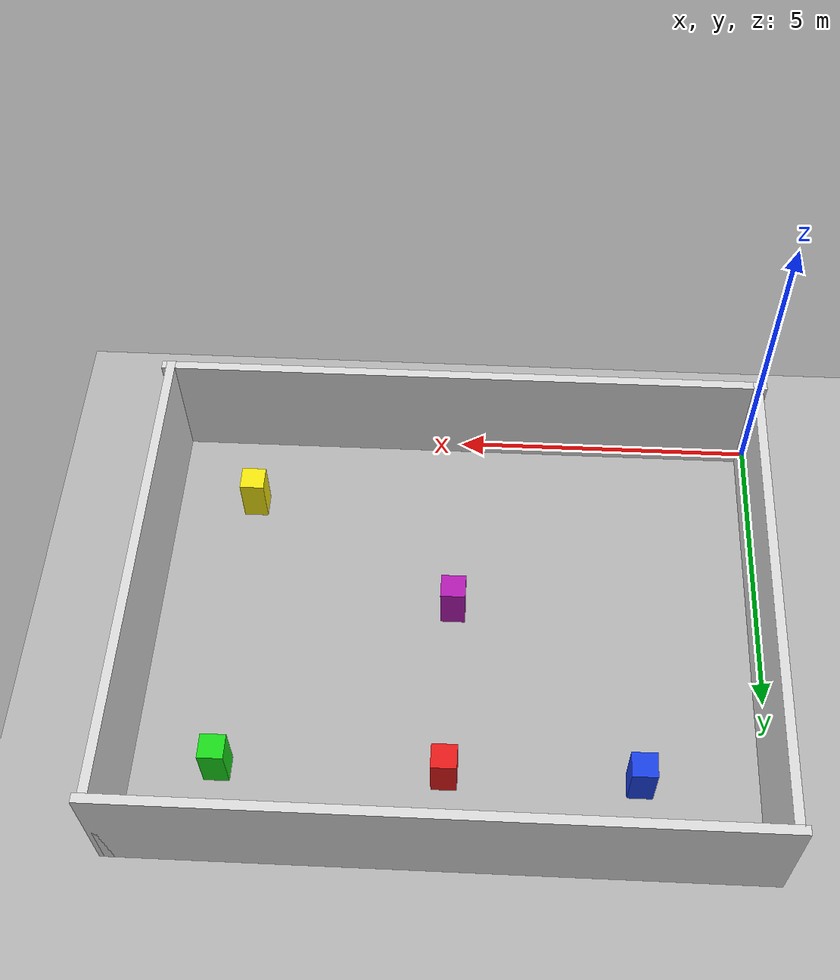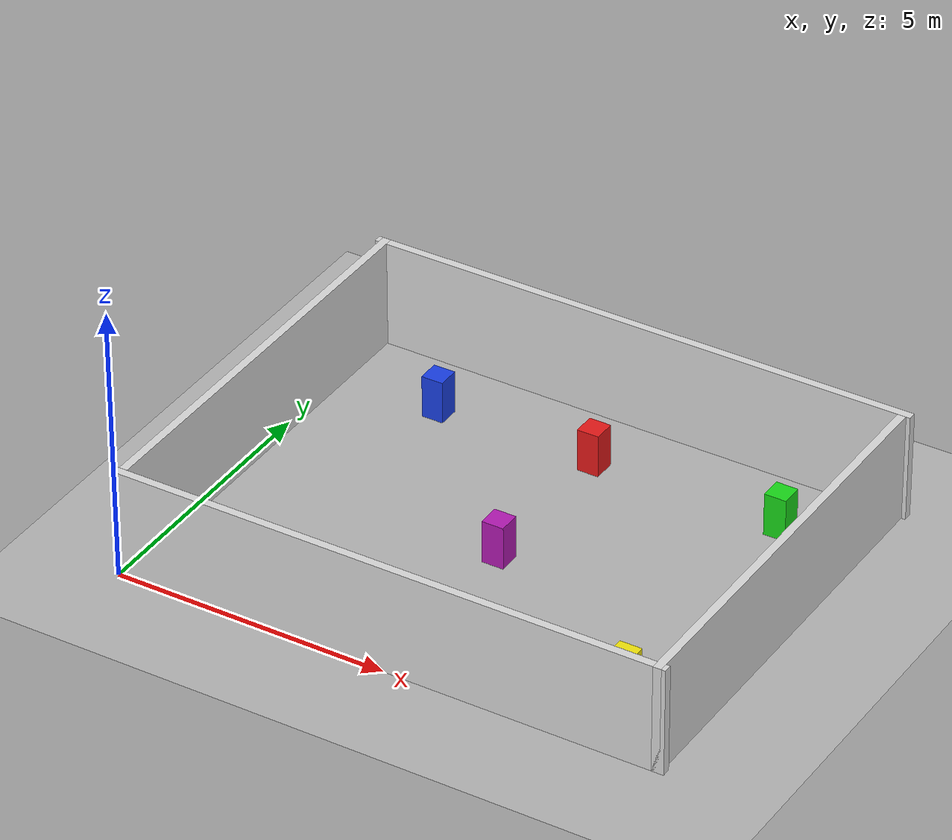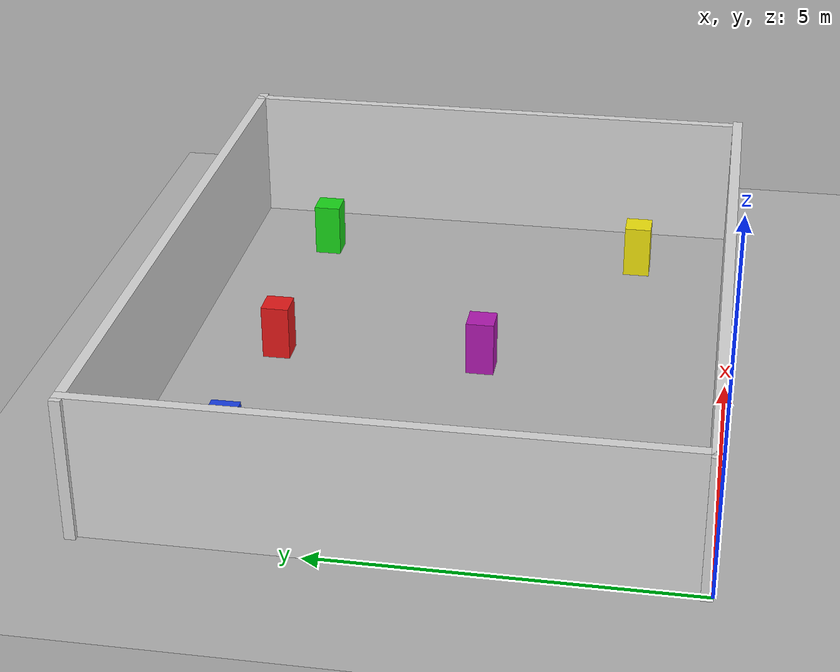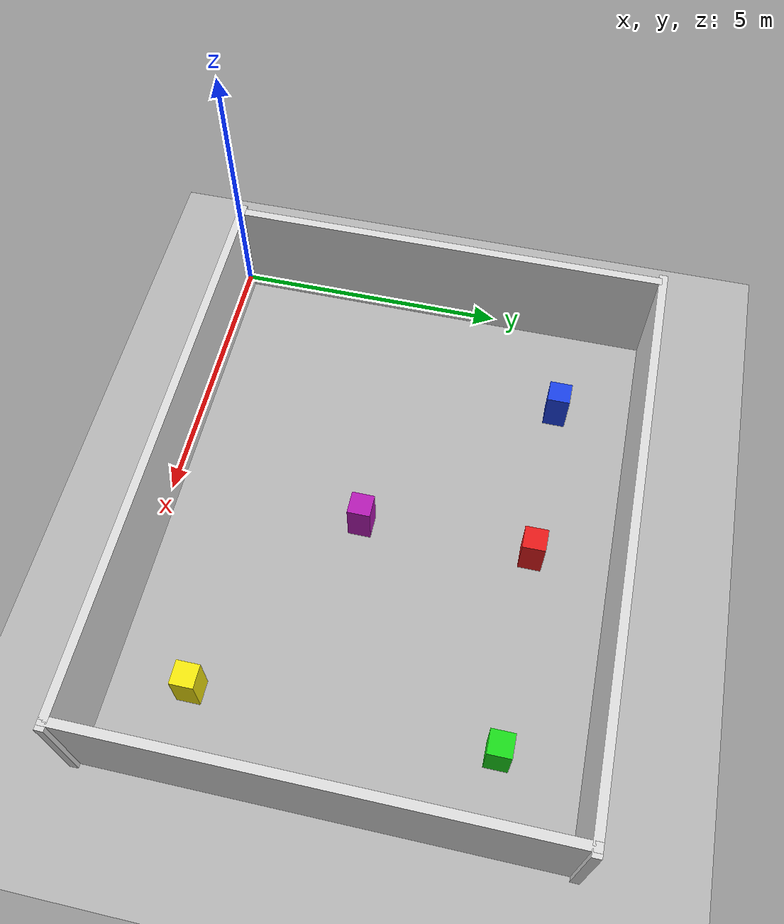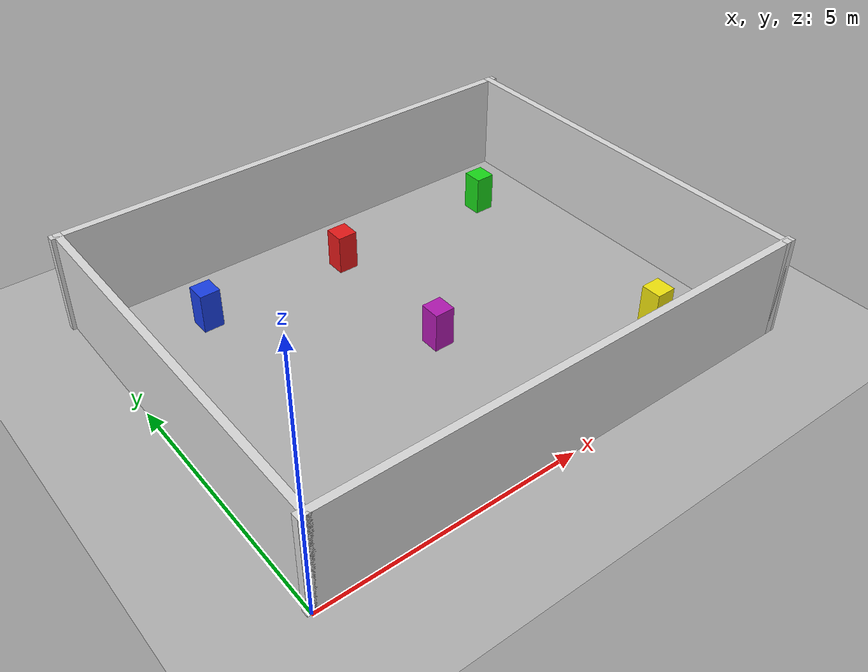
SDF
<?xml version="1.0"?>
<sdf version="1.8">
  <world name="tour_world">

    <!-- ── Simulation physics ────────────────────────────────────────── -->
    <physics name="1ms" type="ode">
      <max_step_size>0.003</max_step_size>
      <real_time_update_rate>1000.0</real_time_update_rate>
      <real_time_factor>1.0</real_time_factor>
    </physics>

    <!-- ── Required Gazebo Harmonic plugins ──────────────────────────── -->
    <plugin filename="gz-sim-physics-system"
            name="gz::sim::systems::Physics"/>
    <plugin filename="gz-sim-user-commands-system"
            name="gz::sim::systems::UserCommands"/>
    <plugin filename="gz-sim-scene-broadcaster-system"
            name="gz::sim::systems::SceneBroadcaster"/>
    <plugin filename="gz-sim-sensors-system"
            name="gz::sim::systems::Sensors">
      <render_engine>ogre2</render_engine>
    </plugin>
    <plugin filename="gz-sim-imu-system"
            name="gz::sim::systems::Imu"/>

    <!-- ── Lighting ──────────────────────────────────────────────────── -->
    <light name="sun" type="directional">
      <cast_shadows>true</cast_shadows>
      <pose>0 0 10 0 0 0</pose>
      <diffuse>0.9 0.9 0.9 1</diffuse>
      <specular>0.3 0.3 0.3 1</specular>
      <direction>-0.5 0.1 -0.9</direction>
    </light>

    <!-- ── Ground plane ──────────────────────────────────────────────── -->
    <model name="ground_plane">
      <static>true</static>
      <link name="link">
        <collision name="collision">
          <geometry><plane><normal>0 0 1</normal><size>50 50</size></plane></geometry>
        </collision>
        <visual name="visual">
          <geometry><plane><normal>0 0 1</normal><size>50 50</size></plane></geometry>
          <material>
            <ambient>0.7 0.7 0.7 1</ambient>
            <diffuse>0.7 0.7 0.7 1</diffuse>
          </material>
        </visual>
      </link>
    </model>

    <model name="wall_south">
      <static>true</static>
      <pose>5.00 0.075 1.0 0 0 0</pose>
      <link name="link">
        <collision name="col"><geometry><box><size>10.15 0.15 2.0</size></box></geometry></collision>
        <visual   name="vis"><geometry><box><size>10.15 0.15 2.0</size></box></geometry>
          <material><ambient>0.85 0.85 0.85 1</ambient><diffuse>0.85 0.85 0.85 1</diffuse></material>
        </visual>
      </link>
    </model>

    <model name="wall_north">
      <static>true</static>
      <pose>5.00 7.925 1.0 0 0 0</pose>
      <link name="link">
        <collision name="col"><geometry><box><size>10.15 0.15 2.0</size></box></geometry></collision>
        <visual   name="vis"><geometry><box><size>10.15 0.15 2.0</size></box></geometry>
          <material><ambient>0.85 0.85 0.85 1</ambient><diffuse>0.85 0.85 0.85 1</diffuse></material>
        </visual>
      </link>
    </model>

    <model name="wall_west">
      <static>true</static>
      <pose>0.075 4.00 1.0 0 0 0</pose>
      <link name="link">
        <collision name="col"><geometry><box><size>0.15 8.00 2.0</size></box></geometry></collision>
        <visual   name="vis"><geometry><box><size>0.15 8.00 2.0</size></box></geometry>
          <material><ambient>0.85 0.85 0.85 1</ambient><diffuse>0.85 0.85 0.85 1</diffuse></material>
        </visual>
      </link>
    </model>

    <model name="wall_east">
      <static>true</static>
      <pose>9.925 4.00 1.0 0 0 0</pose>
      <link name="link">
        <collision name="col"><geometry><box><size>0.15 8.00 2.0</size></box></geometry></collision>
        <visual   name="vis"><geometry><box><size>0.15 8.00 2.0</size></box></geometry>
          <material><ambient>0.85 0.85 0.85 1</ambient><diffuse>0.85 0.85 0.85 1</diffuse></material>
        </visual>
      </link>
    </model>

    <!-- Library — BLUE   world(2.0, 6.5)  map≈(1.0, 5.5) -->
    <model name="landmark_library">
      <static>true</static>
      <pose>2.0 6.5 0.4 0 0 0</pose>
      <link name="link">
        <collision name="col"><geometry><box><size>0.4 0.4 0.8</size></box></geometry></collision>
        <visual   name="vis"><geometry><box><size>0.4 0.4 0.8</size></box></geometry>
          <material>
            <ambient>0.10 0.25 0.90 1</ambient>
            <diffuse>0.10 0.25 0.90 1</diffuse>
            <specular>0.2 0.2 0.2 1</specular>
          </material>
        </visual>
      </link>
    </model>

    <!-- Cafeteria — RED   world(5.0, 6.5)  map≈(4.0, 5.5) -->
    <model name="landmark_cafeteria">
      <static>true</static>
      <pose>5.0 6.5 0.4 0 0 0</pose>
      <link name="link">
        <collision name="col"><geometry><box><size>0.4 0.4 0.8</size></box></geometry></collision>
        <visual   name="vis"><geometry><box><size>0.4 0.4 0.8</size></box></geometry>
          <material>
            <ambient>0.90 0.10 0.10 1</ambient>
            <diffuse>0.90 0.10 0.10 1</diffuse>
            <specular>0.2 0.2 0.2 1</specular>
          </material>
        </visual>
      </link>
    </model>

    <!-- Lab — GREEN   world(8.5, 6.5)  map≈(7.5, 5.5) -->
    <model name="landmark_lab">
      <static>true</static>
      <pose>8.5 6.5 0.4 0 0 0</pose>
      <link name="link">
        <collision name="col"><geometry><box><size>0.4 0.4 0.8</size></box></geometry></collision>
        <visual   name="vis"><geometry><box><size>0.4 0.4 0.8</size></box></geometry>
          <material>
            <ambient>0.10 0.85 0.10 1</ambient>
            <diffuse>0.10 0.85 0.10 1</diffuse>
            <specular>0.2 0.2 0.2 1</specular>
          </material>
        </visual>
      </link>
    </model>

    <!-- Office — YELLOW   world(8.5, 1.5)  map≈(7.5, 0.5) -->
    <model name="landmark_office">
      <static>true</static>
      <pose>8.5 1.5 0.4 0 0 0</pose>
      <link name="link">
        <collision name="col"><geometry><box><size>0.4 0.4 0.8</size></box></geometry></collision>
        <visual   name="vis"><geometry><box><size>0.4 0.4 0.8</size></box></geometry>
          <material>
            <ambient>0.95 0.90 0.05 1</ambient>
            <diffuse>0.95 0.90 0.05 1</diffuse>
            <specular>0.2 0.2 0.2 1</specular>
          </material>
        </visual>
      </link>
    </model>

    <!-- Reception — PURPLE   world(5.0, 3.5)  map≈(4.0, 2.5) -->
    <model name="landmark_reception">
      <static>true</static>
      <pose>5.0 3.5 0.4 0 0 0</pose>
      <link name="link">
        <collision name="col"><geometry><box><size>0.4 0.4 0.8</size></box></geometry></collision>
        <visual   name="vis"><geometry><box><size>0.4 0.4 0.8</size></box></geometry>
          <material>
            <ambient>0.70 0.10 0.70 1</ambient>
            <diffuse>0.70 0.10 0.70 1</diffuse>
            <specular>0.2 0.2 0.2 1</specular>
          </material>
        </visual>
      </link>
    </model>

  </world>
</sdf>
